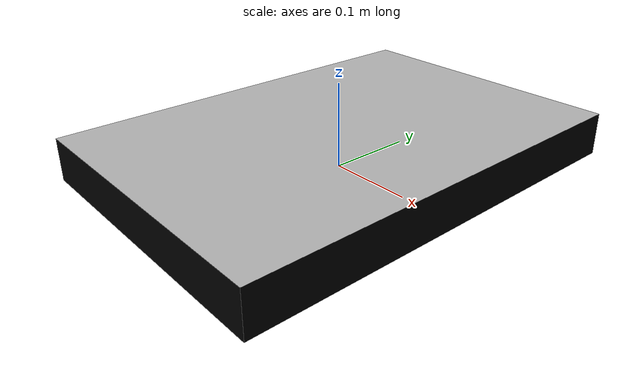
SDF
<?xml version="1.0" ?>
<sdf version="1.6">
  <model name="local_panel">
    <pose>0 0 0.025 0 0 0</pose>
    <static>true</static>
    <link name="link">
      <collision name="collision">
        <geometry>
          <box>
            <size>0.35 0.5 0.05</size>
          </box>
        </geometry>
      </collision>
      <visual name="visual">
        <geometry>
          <mesh>
            <uri>model://local_panel/meshes/local_panel.dae</uri>
          </mesh>
        </geometry>
      </visual>
    </link>
  </model>
</sdf>
